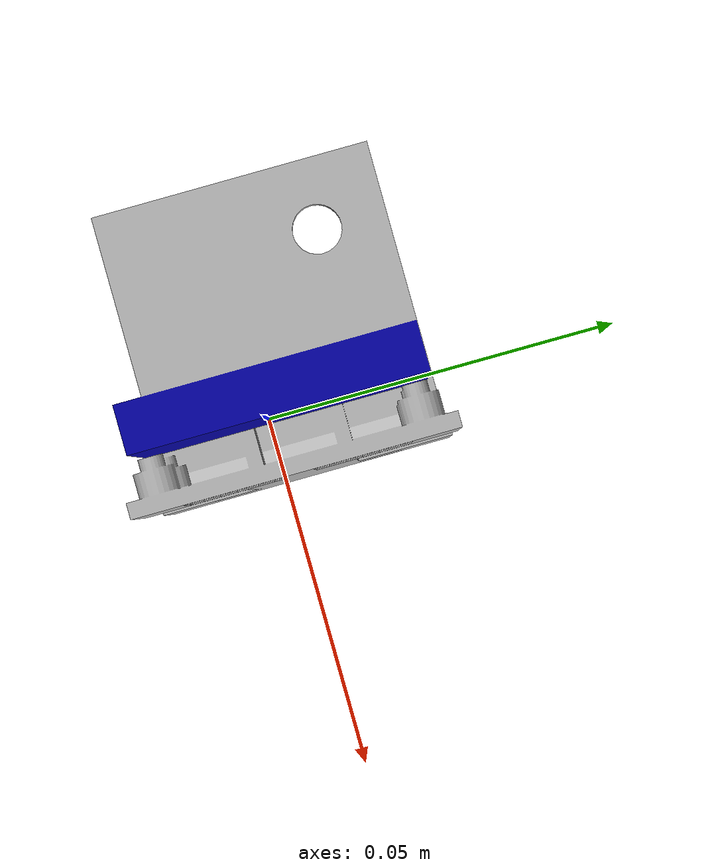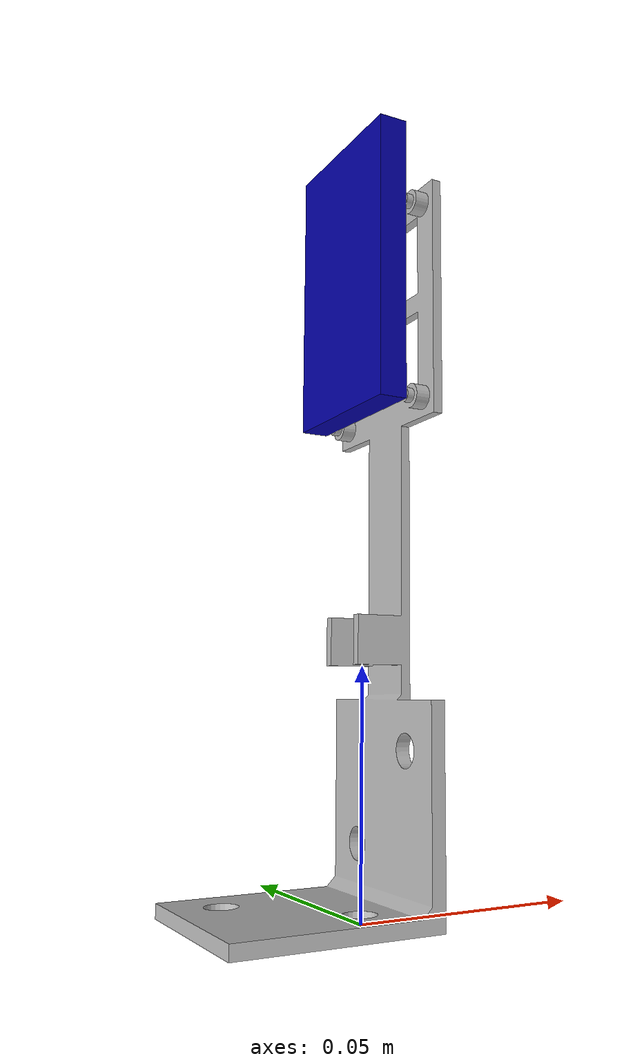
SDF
<?xml version="1.0" ?>
<sdf version="1.5">
  <model name="anchor_stand">
    <static>true</static>
    <link name="link">
      <collision name="collision">
        <geometry>
          <box>
            <size>0.02 0.02 0.19</size>
          </box>
        </geometry>
      </collision>
      <visual name="visual">
        <geometry>
          <mesh>
            <uri>model://anchor_stand/meshes/anchor_stand.dae</uri>
          </mesh>
        </geometry>
      </visual>
    </link>
  </model>
</sdf>
